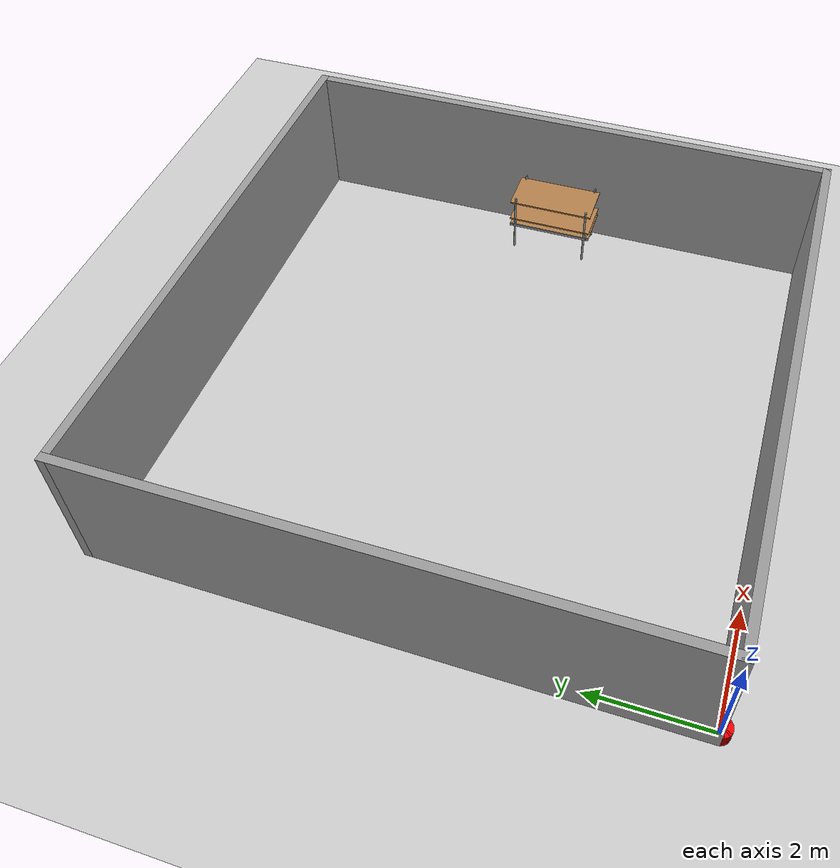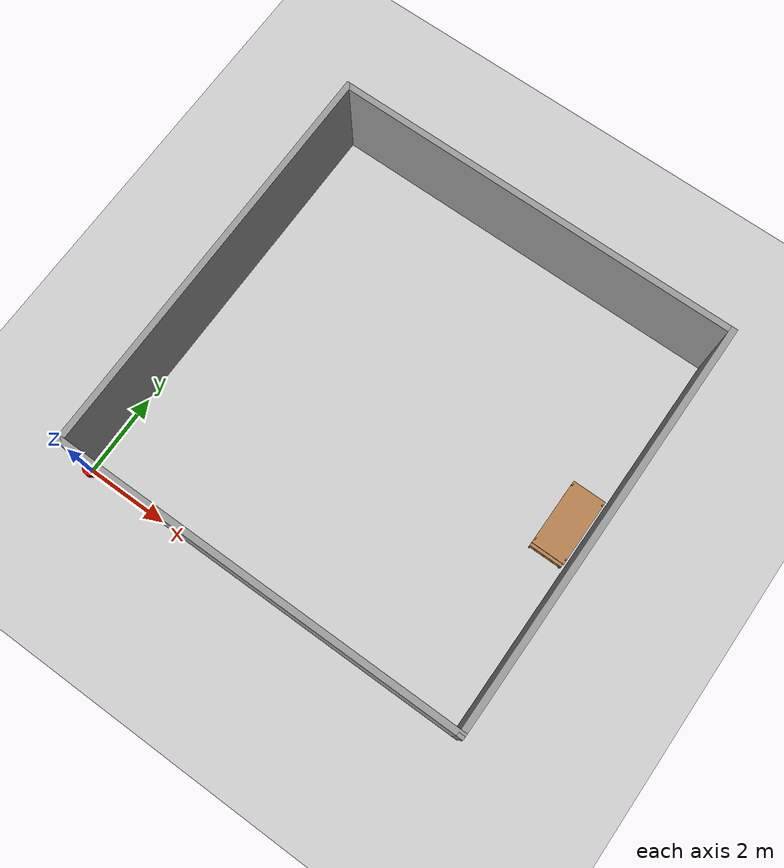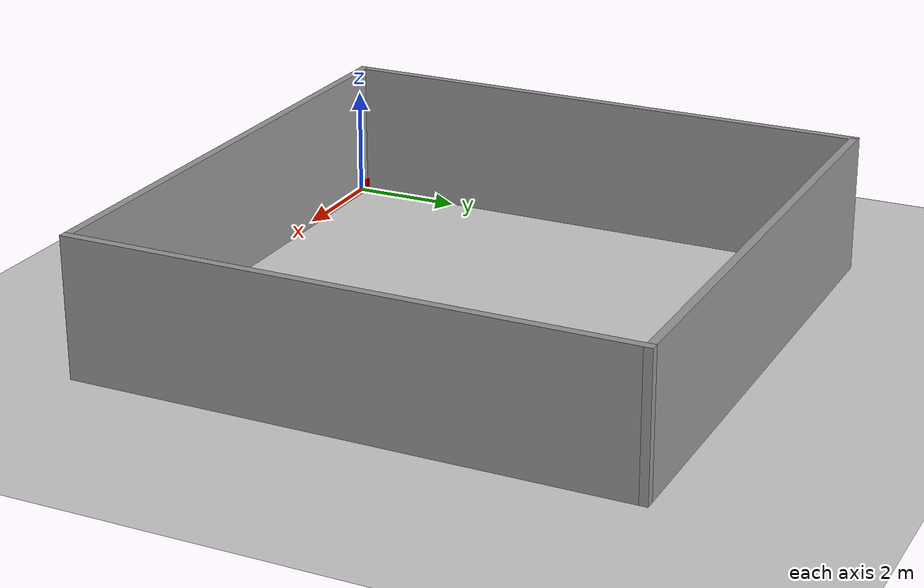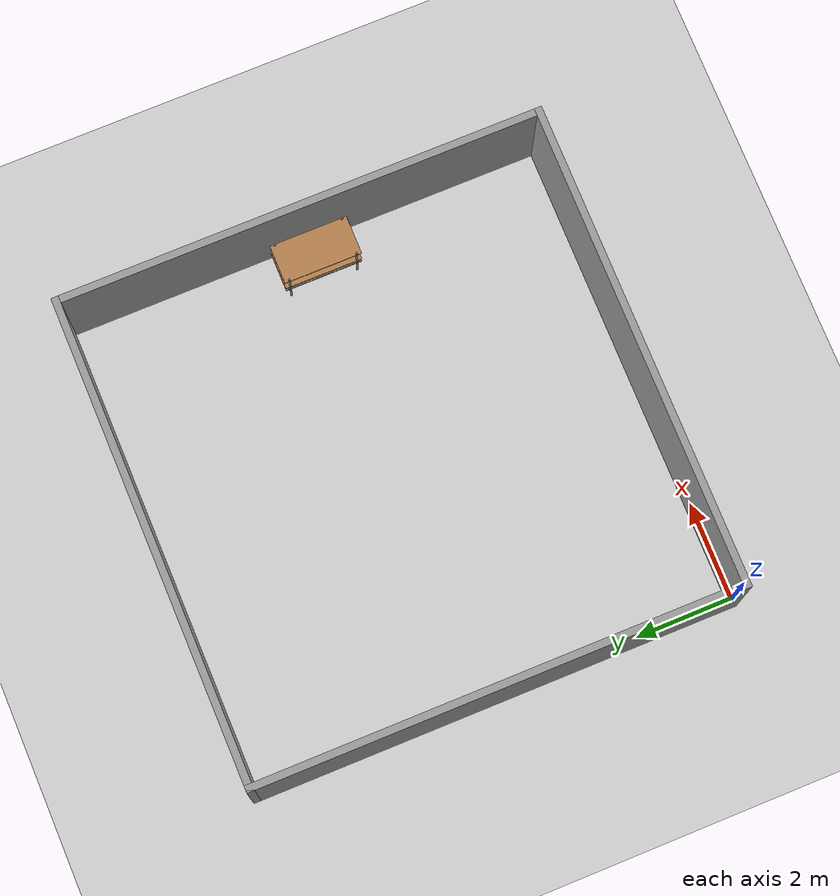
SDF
<sdf version="1.7">
 <world name="default">
  <light name="sun" type="directional">
   <pose>0 0 10 0 -0 0</pose>
   <diffuse>0.8 0.8 0.8 1</diffuse>
   <specular>0.2 0.2 0.2 1</specular>
   <attenuation>
    <range>1000</range>
    <constant>0.9</constant>
    <linear>0.01</linear>
    <quadratic>0.001</quadratic>
   </attenuation>
   <direction>-0.5 0.1 -0.9</direction>
   <spot><inner_angle>0</inner_angle><outer_angle>0</outer_angle><falloff>0</falloff></spot>
  </light>
  <model name="ground_plane">
   <static>1</static>
   <link name="link">
    <collision name="collision">
     <geometry><plane><normal>0 0 1</normal><size>100 100</size></plane></geometry>
     <surface><friction><ode><mu>100</mu><mu2>50</mu2></ode></friction></surface>
    </collision>
    <visual name="visual">
     <cast_shadows>0</cast_shadows>
     <geometry><plane><normal>0 0 1</normal><size>100 100</size></plane></geometry>
     <material>
      <script><uri>file://media/materials/scripts/gazebo.material</uri><name>Gazebo/Grey</name></script>
     </material>
    </visual>
   </link>
  </model>
  <gravity>0 0 -9.8</gravity>
  <magnetic_field>6e-06 2.3e-05 -4.2e-05</magnetic_field>
  <atmosphere type="adiabatic"/>
  <physics type="ode">
   <max_step_size>0.001</max_step_size>
   <real_time_factor>1</real_time_factor>
   <real_time_update_rate>1000</real_time_update_rate>
  </physics>
  <scene><ambient>0.4 0.4 0.4 1</ambient><background>0.7 0.7 0.7 1</background><shadows>1</shadows></scene>
  <audio><device>default</device></audio>
  <spherical_coordinates>
   <surface_model>EARTH_WGS84</surface_model>
   <latitude_deg>0</latitude_deg>
   <longitude_deg>0</longitude_deg>
   <elevation>0</elevation>
   <heading_deg>0</heading_deg>
  </spherical_coordinates>
  <model name="inter">
   <pose>4.83241 4.97383 0 0 -0 0</pose>
   <link name="Wall_2">
    <collision name="Wall_2_Collision">
     <geometry><box><size>10 0.15 2.5</size></box></geometry>
     <pose>0 0 1.25 0 -0 0</pose>
    </collision>
    <visual name="Wall_2_Visual">
     <pose>0 0 1.25 0 -0 0</pose>
     <geometry><box><size>10 0.15 2.5</size></box></geometry>
     <material>
      <script><uri>file://media/materials/scripts/gazebo.material</uri><name>Gazebo/Grey</name></script>
      <ambient>1 1 1 1</ambient>
     </material>
     <meta><layer>0</layer></meta>
    </visual>
    <pose>0 -4.925 0 0 -0 0</pose>
   </link>
   <link name="Wall_6">
    <collision name="Wall_6_Collision">
     <geometry><box><size>10 0.15 2.5</size></box></geometry>
     <pose>0 0 1.25 0 -0 0</pose>
    </collision>
    <visual name="Wall_6_Visual">
     <pose>0 0 1.25 0 -0 0</pose>
     <geometry><box><size>10 0.15 2.5</size></box></geometry>
     <material>
      <script><uri>file://media/materials/scripts/gazebo.material</uri><name>Gazebo/Grey</name></script>
      <ambient>1 1 1 1</ambient>
     </material>
     <meta><layer>0</layer></meta>
    </visual>
    <pose>4.925 0 0 0 -0 1.5708</pose>
   </link>
   <link name="Wall_7">
    <collision name="Wall_7_Collision">
     <geometry><box><size>10 0.15 2.5</size></box></geometry>
     <pose>0 0 1.25 0 -0 0</pose>
    </collision>
    <visual name="Wall_7_Visual">
     <pose>0 0 1.25 0 -0 0</pose>
     <geometry><box><size>10 0.15 2.5</size></box></geometry>
     <material>
      <script><uri>file://media/materials/scripts/gazebo.material</uri><name>Gazebo/Grey</name></script>
      <ambient>1 1 1 1</ambient>
     </material>
     <meta><layer>0</layer></meta>
    </visual>
    <pose>0 4.925 0 0 -0 3.14159</pose>
   </link>
   <link name="Wall_8">
    <collision name="Wall_8_Collision">
     <geometry><box><size>10 0.15 2.5</size></box></geometry>
     <pose>0 0 1.25 0 -0 0</pose>
    </collision>
    <visual name="Wall_8_Visual">
     <pose>0 0 1.25 0 -0 0</pose>
     <geometry><box><size>10 0.15 2.5</size></box></geometry>
     <material>
      <script><uri>file://media/materials/scripts/gazebo.material</uri><name>Gazebo/Grey</name></script>
      <ambient>1 1 1 1</ambient>
     </material>
     <meta><layer>0</layer></meta>
    </visual>
    <pose>-4.925 0 0 0 -0 -1.5708</pose>
   </link>
   <static>1</static>
  </model>
  <model name="warehouse_pallet">
   <link name="warehouse_pallet::link2">
    <pose>0 0 -0 0 -0 1.57</pose>
    <inertial>
     <inertia>
      <ixx>0.0267042</ixx>
      <ixy>0</ixy>
      <ixz>0</ixz>
      <iyy>0.0937875</iyy>
      <iyz>0</iyz>
      <izz>0.120417</izz>
     </inertia>
     <mass>0.1</mass>
    </inertial>
    <visual name="holding1_visual">
     <pose>0 0.39 0.45 0 -0 0</pose>
     <geometry><box><size>1.6 0.02 0.05</size></box></geometry>
     <material>
      <script><uri>file://media/materials/scripts/gazebo.material</uri><name>Gazebo/Grey</name></script>
      <shader type="pixel"><normal_map>__default__</normal_map></shader>
      <ambient>0.3 0.3 0.3 1</ambient>
      <diffuse>0.7 0.7 0.7 1</diffuse>
      <specular>0.01 0.01 0.01 1</specular>
      <emissive>0 0 0 1</emissive>
     </material>
    </visual>
    <visual name="front_left_leg">
     <pose>0.7 0.38 0.5 0 -0 0</pose>
     <geometry><cylinder><radius>0.02</radius><length>1.2</length></cylinder></geometry>
     <material>
      <script><uri>file://media/materials/scripts/gazebo.material</uri><name>Gazebo/Grey</name></script>
      <shader type="pixel"><normal_map>__default__</normal_map></shader>
      <ambient>0.3 0.3 0.3 1</ambient>
      <diffuse>0.7 0.7 0.7 1</diffuse>
      <specular>0.01 0.01 0.01 1</specular>
      <emissive>0 0 0 1</emissive>
     </material>
    </visual>
    <visual name="front_right_leg">
     <pose>0.7 -0.38 0.5 0 -0 0</pose>
     <geometry><cylinder><radius>0.02</radius><length>1.2</length></cylinder></geometry>
     <material>
      <script><uri>file://media/materials/scripts/gazebo.material</uri><name>Gazebo/Grey</name></script>
      <shader type="pixel"><normal_map>__default__</normal_map></shader>
      <ambient>0.3 0.3 0.3 1</ambient>
      <diffuse>0.7 0.7 0.7 1</diffuse>
      <specular>0.01 0.01 0.01 1</specular>
      <emissive>0 0 0 1</emissive>
     </material>
    </visual>
    <visual name="back_right_leg">
     <pose>-0.7 -0.38 0.5 0 -0 0</pose>
     <geometry><cylinder><radius>0.02</radius><length>1.2</length></cylinder></geometry>
     <material>
      <script><uri>file://media/materials/scripts/gazebo.material</uri><name>Gazebo/Grey</name></script>
      <shader type="pixel"><normal_map>__default__</normal_map></shader>
      <ambient>0.3 0.3 0.3 1</ambient>
      <diffuse>0.7 0.7 0.7 1</diffuse>
      <specular>0.01 0.01 0.01 1</specular>
      <emissive>0 0 0 1</emissive>
     </material>
    </visual>
    <visual name="back_left_leg">
     <pose>-0.7 0.38 0.5 0 -0 0</pose>
     <geometry><cylinder><radius>0.02</radius><length>1.2</length></cylinder></geometry>
     <material>
      <script><uri>file://media/materials/scripts/gazebo.material</uri><name>Gazebo/Grey</name></script>
      <shader type="pixel"><normal_map>__default__</normal_map></shader>
      <ambient>0.3 0.3 0.3 1</ambient>
      <diffuse>0.7 0.7 0.7 1</diffuse>
      <specular>0.01 0.01 0.01 1</specular>
      <emissive>0 0 0 1</emissive>
     </material>
    </visual>
    <visual name="visual1">
     <pose>0 0 0.45 0 -0 0</pose>
     <geometry><box><size>1.6 0.8 0.03</size></box></geometry>
     <material>
      <script><uri>file://media/materials/scripts/gazebo.material</uri><name>Gazebo/Wood</name></script>
      <shader type="pixel"><normal_map>__default__</normal_map></shader>
      <ambient>1 1 1 1</ambient>
      <diffuse>1 1 1 1</diffuse>
      <specular>0.2 0.2 0.2 1</specular>
      <emissive>0 0 0 1</emissive>
     </material>
    </visual>
    <visual name="holding2_visual">
     <pose>0 -0.39 0.45 0 -0 0</pose>
     <geometry><box><size>1.6 0.02 0.05</size></box></geometry>
     <material>
      <script><uri>file://media/materials/scripts/gazebo.material</uri><name>Gazebo/Grey</name></script>
      <shader type="pixel"><normal_map>__default__</normal_map></shader>
      <ambient>0.3 0.3 0.3 1</ambient>
      <diffuse>0.7 0.7 0.7 1</diffuse>
      <specular>0.01 0.01 0.01 1</specular>
      <emissive>0 0 0 1</emissive>
     </material>
    </visual>
    <visual name="holding3_visual">
     <pose>0.735 0 0.45 0 -0 1.57</pose>
     <geometry><box><size>0.8 0.02 0.05</size></box></geometry>
     <material>
      <script><uri>file://media/materials/scripts/gazebo.material</uri><name>Gazebo/Grey</name></script>
      <shader type="pixel"><normal_map>__default__</normal_map></shader>
      <ambient>0.3 0.3 0.3 1</ambient>
      <diffuse>0.7 0.7 0.7 1</diffuse>
      <specular>0.01 0.01 0.01 1</specular>
      <emissive>0 0 0 1</emissive>
     </material>
    </visual>
    <visual name="holding4_visual">
     <pose>-0.735 0 0.45 0 -0 1.57</pose>
     <geometry><box><size>0.8 0.02 0.05</size></box></geometry>
     <material>
      <script><uri>file://media/materials/scripts/gazebo.material</uri><name>Gazebo/Grey</name></script>
      <shader type="pixel"><normal_map>__default__</normal_map></shader>
      <ambient>0.3 0.3 0.3 1</ambient>
      <diffuse>0.7 0.7 0.7 1</diffuse>
      <specular>0.01 0.01 0.01 1</specular>
      <emissive>0 0 0 1</emissive>
     </material>
    </visual>
    <visual name="visual2">
     <pose>0 0 0.6 0 -0 0</pose>
     <geometry><box><size>1.6 0.8 0.03</size></box></geometry>
     <material>
      <script><uri>file://media/materials/scripts/gazebo.material</uri><name>Gazebo/Wood</name></script>
      <shader type="pixel"><normal_map>__default__</normal_map></shader>
      <ambient>1 1 1 1</ambient>
      <diffuse>1 1 1 1</diffuse>
      <specular>0.2 0.2 0.2 1</specular>
      <emissive>0 0 0 1</emissive>
     </material>
    </visual>
    <visual name="visual3">
     <pose>0 0 1 0 -0 0</pose>
     <geometry><box><size>1.6 0.8 0.03</size></box></geometry>
     <material>
      <script><uri>file://media/materials/scripts/gazebo.material</uri><name>Gazebo/Wood</name></script>
      <shader type="pixel"><normal_map>__default__</normal_map></shader>
      <ambient>1 1 1 1</ambient>
      <diffuse>1 1 1 1</diffuse>
      <specular>0.2 0.2 0.2 1</specular>
      <emissive>0 0 0 1</emissive>
     </material>
    </visual>
    <collision name="surface1">
     <pose>0 0 0.45 0 -0 0</pose>
     <geometry><box><size>1.6 0.8 0.03</size></box></geometry>
     <surface>
      <friction>
       <ode><mu>20</mu><mu2>20</mu2><fdir1>0 0 0</fdir1><slip1>0</slip1><slip2>0</slip2></ode>
       <torsional>
        <coefficient>1</coefficient>
        <patch_radius>0</patch_radius>
        <surface_radius>0</surface_radius>
        <use_patch_radius>1</use_patch_radius>
        <ode><slip>0</slip></ode>
       </torsional>
      </friction>
      <bounce><restitution_coefficient>0</restitution_coefficient><threshold>1e+06</threshold></bounce>
      <contact>
       <collide_without_contact>0</collide_without_contact>
       <collide_without_contact_bitmask>1</collide_without_contact_bitmask>
       <collide_bitmask>1</collide_bitmask>
       <ode>
        <soft_cfm>0</soft_cfm>
        <soft_erp>0.2</soft_erp>
        <kp>1e+13</kp>
        <kd>1</kd>
        <max_vel>0.01</max_vel>
        <min_depth>0</min_depth>
       </ode>
       <bullet>
        <split_impulse>1</split_impulse>
        <split_impulse_penetration_threshold>-0.01</split_impulse_penetration_threshold>
        <soft_cfm>0</soft_cfm>
        <soft_erp>0.2</soft_erp>
        <kp>1e+13</kp>
        <kd>1</kd>
       </bullet>
      </contact>
     </surface>
    </collision>
    <collision name="holding1_collision">
     <pose>0 0.39 0.45 0 -0 0</pose>
     <geometry><box><size>1.6 0.02 0.05</size></box></geometry>
     <surface>
      <friction>
       <ode><mu>1e+09</mu><mu2>1e+09</mu2><fdir1>0 0 0</fdir1><slip1>0</slip1><slip2>0</slip2></ode>
       <torsional>
        <coefficient>1</coefficient>
        <patch_radius>0</patch_radius>
        <surface_radius>0</surface_radius>
        <use_patch_radius>1</use_patch_radius>
        <ode><slip>0</slip></ode>
       </torsional>
      </friction>
      <bounce><restitution_coefficient>0</restitution_coefficient><threshold>1e+06</threshold></bounce>
      <contact>
       <collide_without_contact>0</collide_without_contact>
       <collide_without_contact_bitmask>1</collide_without_contact_bitmask>
       <collide_bitmask>1</collide_bitmask>
       <ode>
        <soft_cfm>0</soft_cfm>
        <soft_erp>0.2</soft_erp>
        <kp>1e+13</kp>
        <kd>1</kd>
        <max_vel>0.01</max_vel>
        <min_depth>0</min_depth>
       </ode>
       <bullet>
        <split_impulse>1</split_impulse>
        <split_impulse_penetration_threshold>-0.01</split_impulse_penetration_threshold>
        <soft_cfm>0</soft_cfm>
        <soft_erp>0.2</soft_erp>
        <kp>1e+13</kp>
        <kd>1</kd>
       </bullet>
      </contact>
     </surface>
    </collision>
    <collision name="holding2_collision">
     <pose>0 -0.39 0.45 0 -0 0</pose>
     <geometry><box><size>1.6 0.02 0.05</size></box></geometry>
     <surface>
      <friction>
       <ode><mu>1e+09</mu><mu2>1e+09</mu2><fdir1>0 0 0</fdir1><slip1>0</slip1><slip2>0</slip2></ode>
       <torsional>
        <coefficient>1</coefficient>
        <patch_radius>0</patch_radius>
        <surface_radius>0</surface_radius>
        <use_patch_radius>1</use_patch_radius>
        <ode><slip>0</slip></ode>
       </torsional>
      </friction>
      <bounce><restitution_coefficient>0</restitution_coefficient><threshold>1e+06</threshold></bounce>
      <contact>
       <collide_without_contact>0</collide_without_contact>
       <collide_without_contact_bitmask>1</collide_without_contact_bitmask>
       <collide_bitmask>1</collide_bitmask>
       <ode>
        <soft_cfm>0</soft_cfm>
        <soft_erp>0.2</soft_erp>
        <kp>1e+13</kp>
        <kd>1</kd>
        <max_vel>0.01</max_vel>
        <min_depth>0</min_depth>
       </ode>
       <bullet>
        <split_impulse>1</split_impulse>
        <split_impulse_penetration_threshold>-0.01</split_impulse_penetration_threshold>
        <soft_cfm>0</soft_cfm>
        <soft_erp>0.2</soft_erp>
        <kp>1e+13</kp>
        <kd>1</kd>
       </bullet>
      </contact>
     </surface>
    </collision>
    <collision name="holding3_collision">
     <pose>0.735 0 0.45 0 -0 1.57</pose>
     <geometry><box><size>0.8 0.02 0.05</size></box></geometry>
     <surface>
      <friction>
       <ode><mu>1e+09</mu><mu2>1e+09</mu2><fdir1>0 0 0</fdir1><slip1>0</slip1><slip2>0</slip2></ode>
       <torsional>
        <coefficient>1</coefficient>
        <patch_radius>0</patch_radius>
        <surface_radius>0</surface_radius>
        <use_patch_radius>1</use_patch_radius>
        <ode><slip>0</slip></ode>
       </torsional>
      </friction>
      <bounce><restitution_coefficient>0</restitution_coefficient><threshold>1e+06</threshold></bounce>
      <contact>
       <collide_without_contact>0</collide_without_contact>
       <collide_without_contact_bitmask>1</collide_without_contact_bitmask>
       <collide_bitmask>1</collide_bitmask>
       <ode>
        <soft_cfm>0</soft_cfm>
        <soft_erp>0.2</soft_erp>
        <kp>1e+13</kp>
        <kd>1</kd>
        <max_vel>0.01</max_vel>
        <min_depth>0</min_depth>
       </ode>
       <bullet>
        <split_impulse>1</split_impulse>
        <split_impulse_penetration_threshold>-0.01</split_impulse_penetration_threshold>
        <soft_cfm>0</soft_cfm>
        <soft_erp>0.2</soft_erp>
        <kp>1e+13</kp>
        <kd>1</kd>
       </bullet>
      </contact>
     </surface>
    </collision>
    <collision name="holding4_collision">
     <pose>-0.735 0 0.45 0 -0 1.57</pose>
     <geometry><box><size>0.8 0.02 0.05</size></box></geometry>
     <surface>
      <friction>
       <ode><mu>1e+09</mu><mu2>1e+09</mu2><fdir1>0 0 0</fdir1><slip1>0</slip1><slip2>0</slip2></ode>
       <torsional>
        <coefficient>1</coefficient>
        <patch_radius>0</patch_radius>
        <surface_radius>0</surface_radius>
        <use_patch_radius>1</use_patch_radius>
        <ode><slip>0</slip></ode>
       </torsional>
      </friction>
      <bounce><restitution_coefficient>0</restitution_coefficient><threshold>1e+06</threshold></bounce>
      <contact>
       <collide_without_contact>0</collide_without_contact>
       <collide_without_contact_bitmask>1</collide_without_contact_bitmask>
       <collide_bitmask>1</collide_bitmask>
       <ode>
        <soft_cfm>0</soft_cfm>
        <soft_erp>0.2</soft_erp>
        <kp>1e+13</kp>
        <kd>1</kd>
        <max_vel>0.01</max_vel>
        <min_depth>0</min_depth>
       </ode>
       <bullet>
        <split_impulse>1</split_impulse>
        <split_impulse_penetration_threshold>-0.01</split_impulse_penetration_threshold>
        <soft_cfm>0</soft_cfm>
        <soft_erp>0.2</soft_erp>
        <kp>1e+13</kp>
        <kd>1</kd>
       </bullet>
      </contact>
     </surface>
    </collision>
    <collision name="surface3">
     <pose>0 0 1 0 -0 0</pose>
     <geometry><box><size>1.6 0.8 0.03</size></box></geometry>
     <surface>
      <friction>
       <ode><mu>2.5</mu><mu2>2.5</mu2><fdir1>0 0 0</fdir1><slip1>0</slip1><slip2>0</slip2></ode>
       <torsional>
        <coefficient>1</coefficient>
        <patch_radius>0</patch_radius>
        <surface_radius>0</surface_radius>
        <use_patch_radius>1</use_patch_radius>
        <ode><slip>0</slip></ode>
       </torsional>
      </friction>
      <bounce><restitution_coefficient>0</restitution_coefficient><threshold>1e+06</threshold></bounce>
      <contact>
       <collide_without_contact>0</collide_without_contact>
       <collide_without_contact_bitmask>1</collide_without_contact_bitmask>
       <collide_bitmask>1</collide_bitmask>
       <ode>
        <soft_cfm>0</soft_cfm>
        <soft_erp>0.2</soft_erp>
        <kp>1e+13</kp>
        <kd>1</kd>
        <max_vel>0.01</max_vel>
        <min_depth>0</min_depth>
       </ode>
       <bullet>
        <split_impulse>1</split_impulse>
        <split_impulse_penetration_threshold>-0.01</split_impulse_penetration_threshold>
        <soft_cfm>0</soft_cfm>
        <soft_erp>0.2</soft_erp>
        <kp>1e+13</kp>
        <kd>1</kd>
       </bullet>
      </contact>
     </surface>
    </collision>
    <collision name="surface2">
     <pose>0 0 0.6 0 -0 0</pose>
     <geometry><box><size>1.6 0.8 0.03</size></box></geometry>
     <surface>
      <friction>
       <ode><mu>2.5</mu><mu2>2.5</mu2><fdir1>0 0 0</fdir1><slip1>0</slip1><slip2>0</slip2></ode>
       <torsional>
        <coefficient>1</coefficient>
        <patch_radius>0</patch_radius>
        <surface_radius>0</surface_radius>
        <use_patch_radius>1</use_patch_radius>
        <ode><slip>0</slip></ode>
       </torsional>
      </friction>
      <bounce><restitution_coefficient>0</restitution_coefficient><threshold>1e+06</threshold></bounce>
      <contact>
       <collide_without_contact>0</collide_without_contact>
       <collide_without_contact_bitmask>1</collide_without_contact_bitmask>
       <collide_bitmask>1</collide_bitmask>
       <ode>
        <soft_cfm>0</soft_cfm>
        <soft_erp>0.2</soft_erp>
        <kp>1e+13</kp>
        <kd>1</kd>
        <max_vel>0.01</max_vel>
        <min_depth>0</min_depth>
       </ode>
       <bullet>
        <split_impulse>1</split_impulse>
        <split_impulse_penetration_threshold>-0.01</split_impulse_penetration_threshold>
        <soft_cfm>0</soft_cfm>
        <soft_erp>0.2</soft_erp>
        <kp>1e+13</kp>
        <kd>1</kd>
       </bullet>
      </contact>
     </surface>
    </collision>
    <collision name="front_right_leg_collision">
     <pose>0.7 -0.38 0.5 0 -0 0</pose>
     <geometry><cylinder><radius>0.02</radius><length>1</length></cylinder></geometry>
     <surface>
      <friction>
       <ode><mu>0.1</mu><mu2>0.1</mu2><fdir1>0 0 0</fdir1><slip1>0</slip1><slip2>0</slip2></ode>
       <torsional>
        <coefficient>1</coefficient>
        <patch_radius>0</patch_radius>
        <surface_radius>0</surface_radius>
        <use_patch_radius>1</use_patch_radius>
        <ode><slip>0</slip></ode>
       </torsional>
      </friction>
      <bounce><restitution_coefficient>0</restitution_coefficient><threshold>1e+06</threshold></bounce>
      <contact>
       <collide_without_contact>0</collide_without_contact>
       <collide_without_contact_bitmask>1</collide_without_contact_bitmask>
       <collide_bitmask>1</collide_bitmask>
       <ode>
        <soft_cfm>0</soft_cfm>
        <soft_erp>0.2</soft_erp>
        <kp>1e+13</kp>
        <kd>1</kd>
        <max_vel>0.01</max_vel>
        <min_depth>0</min_depth>
       </ode>
       <bullet>
        <split_impulse>1</split_impulse>
        <split_impulse_penetration_threshold>-0.01</split_impulse_penetration_threshold>
        <soft_cfm>0</soft_cfm>
        <soft_erp>0.2</soft_erp>
        <kp>1e+13</kp>
        <kd>1</kd>
       </bullet>
      </contact>
     </surface>
    </collision>
    <collision name="back_right_leg_collision">
     <pose>-0.7 -0.38 0.5 0 -0 0</pose>
     <geometry><cylinder><radius>0.02</radius><length>1.2</length></cylinder></geometry>
     <surface>
      <friction>
       <ode><mu>0.1</mu><mu2>0.1</mu2><fdir1>0 0 0</fdir1><slip1>0</slip1><slip2>0</slip2></ode>
       <torsional>
        <coefficient>1</coefficient>
        <patch_radius>0</patch_radius>
        <surface_radius>0</surface_radius>
        <use_patch_radius>1</use_patch_radius>
        <ode><slip>0</slip></ode>
       </torsional>
      </friction>
      <bounce><restitution_coefficient>0</restitution_coefficient><threshold>1e+06</threshold></bounce>
      <contact>
       <collide_without_contact>0</collide_without_contact>
       <collide_without_contact_bitmask>1</collide_without_contact_bitmask>
       <collide_bitmask>1</collide_bitmask>
       <ode>
        <soft_cfm>0</soft_cfm>
        <soft_erp>0.2</soft_erp>
        <kp>1e+13</kp>
        <kd>1</kd>
        <max_vel>0.01</max_vel>
        <min_depth>0</min_depth>
       </ode>
       <bullet>
        <split_impulse>1</split_impulse>
        <split_impulse_penetration_threshold>-0.01</split_impulse_penetration_threshold>
        <soft_cfm>0</soft_cfm>
        <soft_erp>0.2</soft_erp>
        <kp>1e+13</kp>
        <kd>1</kd>
       </bullet>
      </contact>
     </surface>
    </collision>
    <collision name="front_left_leg_collision">
     <pose>0.7 0.38 0.5 0 -0 0</pose>
     <geometry><cylinder><radius>0.02</radius><length>1.2</length></cylinder></geometry>
     <surface>
      <friction>
       <ode><mu>0.1</mu><mu2>0.1</mu2><fdir1>0 0 0</fdir1><slip1>0</slip1><slip2>0</slip2></ode>
       <torsional>
        <coefficient>1</coefficient>
        <patch_radius>0</patch_radius>
        <surface_radius>0</surface_radius>
        <use_patch_radius>1</use_patch_radius>
        <ode><slip>0</slip></ode>
       </torsional>
      </friction>
      <bounce><restitution_coefficient>0</restitution_coefficient><threshold>1e+06</threshold></bounce>
      <contact>
       <collide_without_contact>0</collide_without_contact>
       <collide_without_contact_bitmask>1</collide_without_contact_bitmask>
       <collide_bitmask>1</collide_bitmask>
       <ode>
        <soft_cfm>0</soft_cfm>
        <soft_erp>0.2</soft_erp>
        <kp>1e+13</kp>
        <kd>1</kd>
        <max_vel>0.01</max_vel>
        <min_depth>0</min_depth>
       </ode>
       <bullet>
        <split_impulse>1</split_impulse>
        <split_impulse_penetration_threshold>-0.01</split_impulse_penetration_threshold>
        <soft_cfm>0</soft_cfm>
        <soft_erp>0.2</soft_erp>
        <kp>1e+13</kp>
        <kd>1</kd>
       </bullet>
      </contact>
     </surface>
    </collision>
    <collision name="back_left_leg_collision">
     <pose>-0.7 0.38 0.5 0 -0 0</pose>
     <geometry><cylinder><radius>0.02</radius><length>1.2</length></cylinder></geometry>
     <surface>
      <friction>
       <ode><mu>0.1</mu><mu2>0.1</mu2><fdir1>0 0 0</fdir1><slip1>0</slip1><slip2>0</slip2></ode>
       <torsional>
        <coefficient>1</coefficient>
        <patch_radius>0</patch_radius>
        <surface_radius>0</surface_radius>
        <use_patch_radius>1</use_patch_radius>
        <ode><slip>0</slip></ode>
       </torsional>
      </friction>
      <bounce><restitution_coefficient>0</restitution_coefficient><threshold>1e+06</threshold></bounce>
      <contact>
       <collide_without_contact>0</collide_without_contact>
       <collide_without_contact_bitmask>1</collide_without_contact_bitmask>
       <collide_bitmask>1</collide_bitmask>
       <ode>
        <soft_cfm>0</soft_cfm>
        <soft_erp>0.2</soft_erp>
        <kp>1e+13</kp>
        <kd>1</kd>
        <max_vel>0.01</max_vel>
        <min_depth>0</min_depth>
       </ode>
       <bullet>
        <split_impulse>1</split_impulse>
        <split_impulse_penetration_threshold>-0.01</split_impulse_penetration_threshold>
        <soft_cfm>0</soft_cfm>
        <soft_erp>0.2</soft_erp>
        <kp>1e+13</kp>
        <kd>1</kd>
       </bullet>
      </contact>
     </surface>
    </collision>
   </link>
   <static>1</static>
   <pose>9.20468 4.90482 0.099991 -2e-06 4e-06 0.00027</pose>
  </model>
  <model name="turtlebot3_dqn_obstacle1">
   <plugin name="obstacle1" filename="libobstacle4.so"/>
   <include><uri>model://turtlebot3_dqn_world/obstacle4</uri></include>
  </model>
  <model name="turtlebot3_dqn_obstacle2">
   <plugin name="obstacle2" filename="libobstacle2.so"/>
   <include><pose>0 0 0 0 0 1.57</pose><uri>model://turtlebot3_dqn_world/obstacle5</uri></include>
  </model>
  <model name="turtlebot3_dqn_obstacle3">
   <plugin name="obstacle3" filename="libobstacle3.so"/>
   <include><uri>model://turtlebot3_dqn_world/obstacle3</uri></include>
  </model>
 </world>
</sdf>

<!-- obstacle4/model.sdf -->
<sdf version='1.6'>
    <model name="obstacle4">
      <link name="link_obstacle4">
        <collision name="collision">
          <geometry>
            <cylinder>
              <radius>0.16</radius>
              <length>0.50</length>
            </cylinder>
          </geometry>
        </collision>

        <visual name="visual">
          <geometry>
            <cylinder>
              <radius>0.16</radius>
              <length>0.50</length>
            </cylinder>
          </geometry>
          <material>
            <ambient>1 0 0 1</ambient>
            <diffuse>1 0 0 1</diffuse>
            <specular>0 0 0 1</specular>
            <emissive>0 0 0 1</emissive>
          </material>
        </visual>
      </link>

      <plugin name="p3d_base_controller_obstacle4" filename="libgazebo_ros_p3d.so">
        <ros>
          <namespace>/obstacle</namespace>
          <remapping>odom:=odom</remapping>
        </ros>
        <always_on>true</always_on>
        <update_rate>50.0</update_rate>
        <body_name>link_obstacle4</body_name>
        <topic_name>odom_obs</topic_name>
        <gaussian_noise>0.0</gaussian_noise>
        <frame_name>world</frame_name>
        <xyz_offset>0 0 0</xyz_offset>
        <rpy_offset>0 0 0</rpy_offset>
      </plugin>
    </model>
</sdf>

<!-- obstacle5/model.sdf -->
<sdf version='1.6'>
    <model name="obstacle5">
      <link name="link_obstacle5">
        <collision name="collision">
          <geometry>
            <cylinder>
              <radius>0.16</radius>
              <length>0.50</length>
            </cylinder>
          </geometry>
        </collision>

        <visual name="visual">
          <geometry>
            <cylinder>
              <radius>0.16</radius>
              <length>0.50</length>
            </cylinder>
          </geometry>
          <material>
            <ambient>1 0 0 1</ambient>
            <diffuse>1 0 0 1</diffuse>
            <specular>0 0 0 1</specular>
            <emissive>0 0 0 1</emissive>
          </material>
        </visual>
      </link>

      <plugin name="p3d_base_controller_obstacle5" filename="libgazebo_ros_p3d.so">
        <ros>
          <namespace>/obstacle</namespace>
          <remapping>odom:=odom</remapping>
        </ros>
        <always_on>true</always_on>
        <update_rate>50.0</update_rate>
        <body_name>link_obstacle5</body_name>
        <topic_name>odom_obs</topic_name>
        <gaussian_noise>0.0</gaussian_noise>
        <frame_name>world</frame_name>
        <xyz_offset>0 0 0</xyz_offset>
        <rpy_offset>0 0 0</rpy_offset>
      </plugin>
    </model>
</sdf>

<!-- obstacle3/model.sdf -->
<sdf version='1.6'>
    <model name="obstacle3">
      <link name="link_obstacle3">
        <collision name="collision">
          <geometry>
            <cylinder>
              <radius>0.16</radius>
              <length>0.50</length>
            </cylinder>
          </geometry>
        </collision>

        <visual name="visual">
          <geometry>
            <cylinder>
              <radius>0.16</radius>
              <length>0.50</length>
            </cylinder>
          </geometry>
          <material>
            <ambient>1 0 0 1</ambient>
            <diffuse>1 0 0 1</diffuse>
            <specular>0 0 0 1</specular>
            <emissive>0 0 0 1</emissive>
          </material>
        </visual>
      </link>

      <plugin name="p3d_base_controller_obstacle3" filename="libgazebo_ros_p3d.so">
        <ros>
          <namespace>/obstacle</namespace>
          <remapping>odom:=odom</remapping>
        </ros>
        <always_on>true</always_on>
        <update_rate>50.0</update_rate>
        <body_name>link_obstacle3</body_name>
        <topic_name>odom_obs</topic_name>
        <gaussian_noise>0.0</gaussian_noise>
        <frame_name>world</frame_name>
        <xyz_offset>0 0 0</xyz_offset>
        <rpy_offset>0 0 0</rpy_offset>
      </plugin>
    </model>
</sdf>
